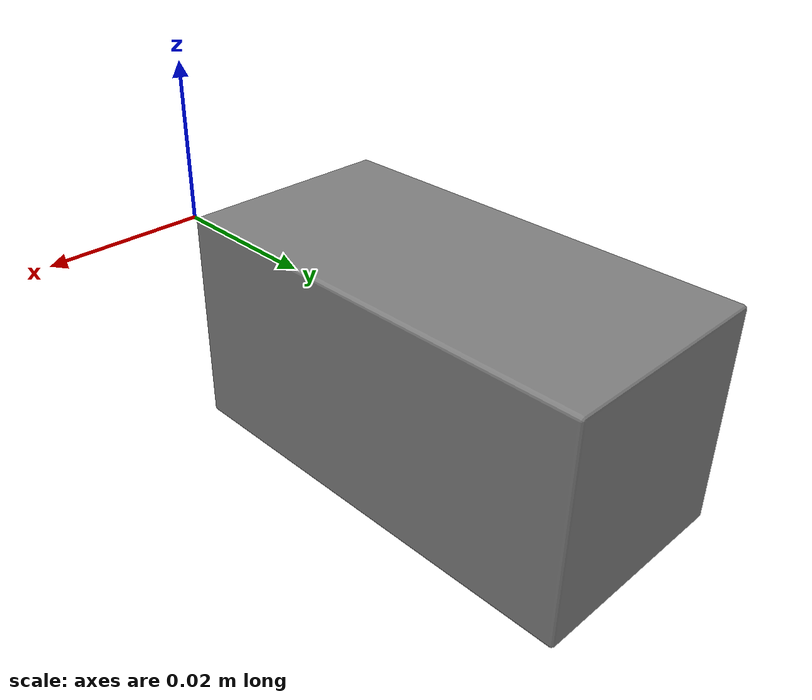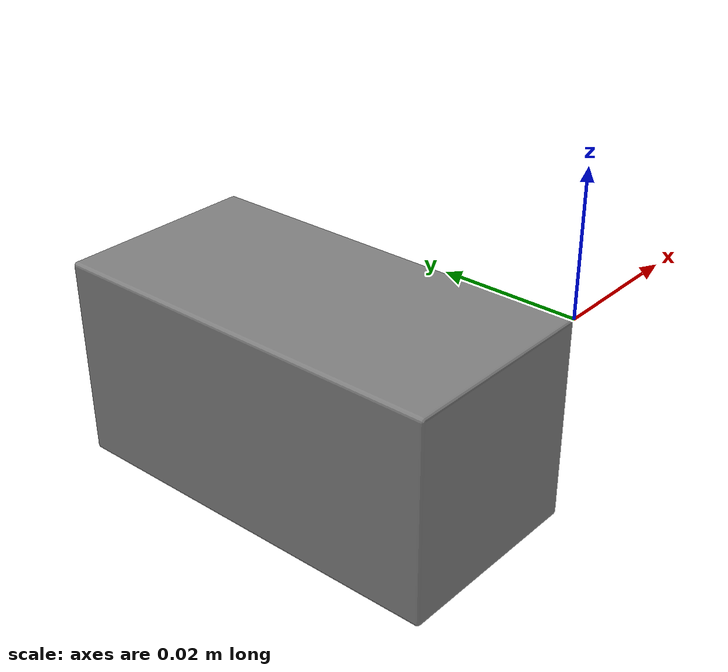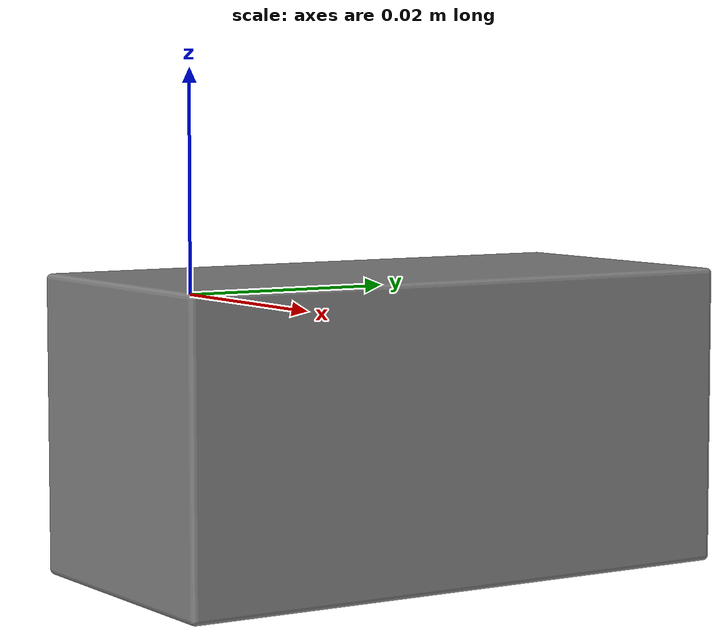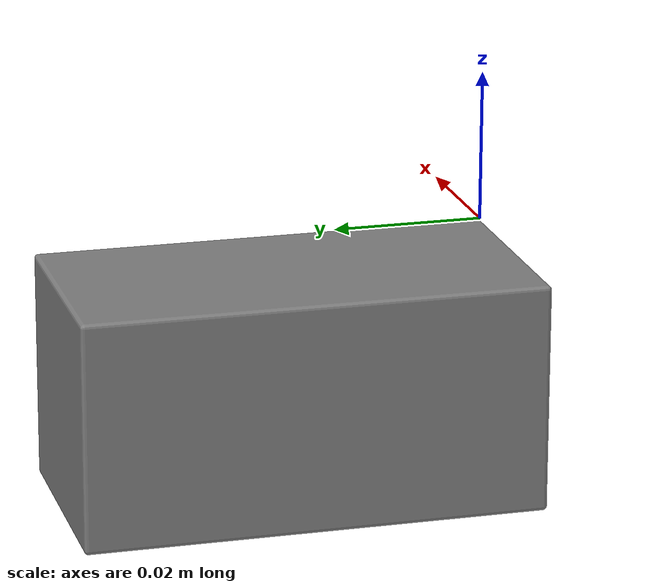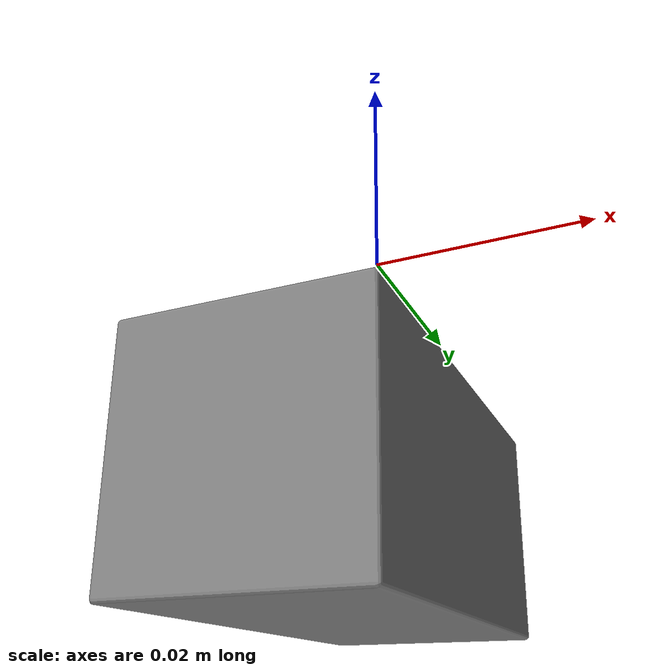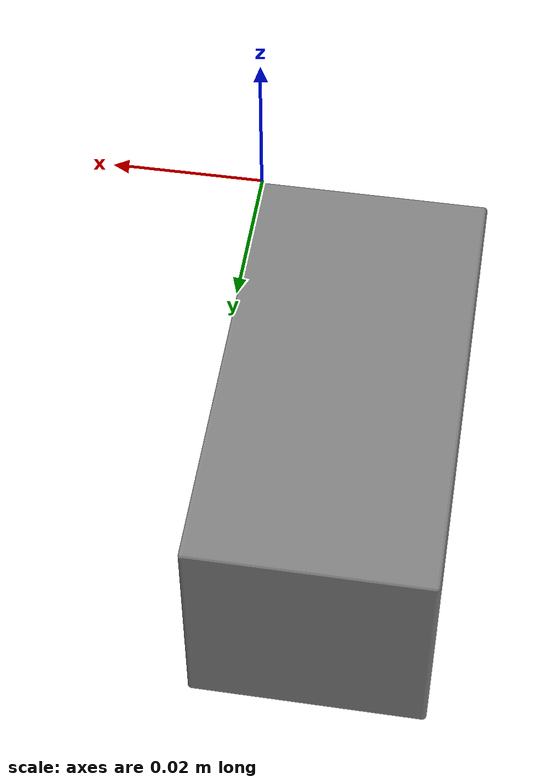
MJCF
<?xml version='1.0' encoding='utf8'?>
<mujoco model="cuboid_model">
    <compiler angle="degree" coordinate="local" />

    <option timestep="0.01" gravity="0 0 -9.81" />

    <asset>
        <mesh name="cuboid_vis" file="visual/cuboid.obj" scale="0.001 0.001 0.001" />
        <mesh name="cuboid_mesh" file="collision/cuboid.stl" scale="0.001 0.001 0.001" />

    </asset>

    <worldbody>
        <body>
            <body name="object" pos="0 0 0">
                <geom solimp="0.998 0.998 0.001" solref="0.001 1" density="100" friction="0.95 0.3 0.1" type="mesh" mesh="cuboid_vis" conaffinity="0" contype="0" group="1" />
                <geom name="cuboid_geom" type="mesh" mesh="cuboid_mesh" rgba="0.65 0.54 0.44 0.7" mass="0.1" />
            </body>

            <site rgba="0 0 0 0" size="0.005" pos="1.8000000023832283e-09 0.0001579002000000018 -0.03245274" name="bottom_site" />
            <site rgba="0 0 0 0" size="0.005" pos="1.8000000023832283e-09 0.0001579002000000018 0.033050489999999995" name="top_site" />
            <site rgba="0 0 0 0" size="0.005" pos="0.05891761439999999 0.057567376799999986 0.0002988749999999995" name="horizontal_radius_site" />
        </body>
    </worldbody>
</mujoco>
